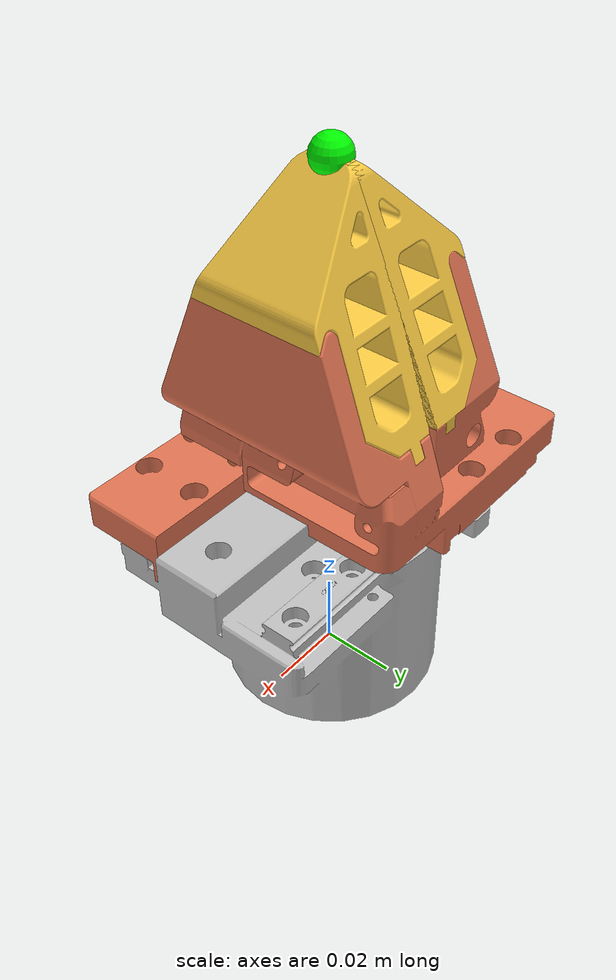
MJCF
<mujoco model="flexible">
  <compiler angle="radian"/>

  <asset>
    <mesh name="flexible_base" content_type="model/stl" file="assets/base.stl"/>
    <mesh name="linear_module" content_type="model/stl" file="assets/linear_module.stl"/>
    <mesh name="soft_tips" content_type="model/stl" file="assets/soft_tips.stl"/>
  </asset>

  <worldbody>
    <body name="gripper" pos="0 0.0007004 -0.0021481" quat="0 -0.70711 0.70711 0">
      <inertial pos="0 0 0" mass="0.455645" diaginertia="0.0003 0.0003 0.0002"/>
      <geom type="mesh" quat="0 0.707107 0.707107 0" rgba="0.74902 0.74902 0.74902 1" mesh="flexible_base" contype="0" conaffinity="0"/>
      <site name="tcp_site" pos="0 0 0" quat="0 1 0 0" size="0.005" rgba="1 0 0 1"/>
      <site name="grasp_site" pos="0 0 -0.1439" quat="0 1 0 0" size="0.005" rgba="0 1 0 1"/>
      <body name="linear_module" pos="-0.02615 0.04395 -0.0547" quat="0.707107 -0.707107 0 0">
        <inertial pos="0.0206066 0.0299426 -0.0504181" quat="0.764844 0.232608 -0.418301 0.431197" mass="0.120713" diaginertia="9.73585e-05 9.07567e-05 4.0415e-05"/>
        <joint name="joint7" pos="0 0 0" axis="0 0 -1" type="slide" range="0 0.048" actuatorfrcrange="-10 10"/>
        <geom pos="0.00406876 0.0123 -0.0209218" quat="0.499998 -0.5 -0.5 -0.500002" type="mesh" rgba="0.87451 0.447059 0.317647 1" mesh="linear_module"/>
        <geom pos="0.006 0.00575867 -0.0451883" quat="0.499998 -0.5 -0.5 -0.500002" type="mesh" rgba="0.980392 0.796078 0.262745 1" mesh="soft_tips"/>
      </body>
      <body name="linear_module_2" pos="0.02615 -0.04395 -0.0547" quat="0 0 0.707107 -0.707107">
        <inertial pos="0.0206066 0.0299426 -0.0504181" quat="0.764844 0.232608 -0.418301 0.431197" mass="0.120713" diaginertia="9.73585e-05 9.07567e-05 4.0415e-05"/>
        <joint name="joint8" pos="0 0 0" axis="0 0 -1" type="slide" range="0 0.048" actuatorfrcrange="-10 10"/>
        <geom pos="0.006 0.00575867 -0.0451883" quat="0.499998 -0.5 -0.5 -0.500002" type="mesh" rgba="0.980392 0.796078 0.262745 1" mesh="soft_tips"/>
        <geom pos="0.00406876 0.0123 -0.0209218" quat="0.499998 -0.5 -0.5 -0.500002" type="mesh" rgba="0.87451 0.447059 0.317647 1" mesh="linear_module"/>
      </body>
    </body>
  </worldbody>

  <equality>
    <joint joint1="joint7" joint2="joint8" polycoef="0 1 0 0 0"/>
  </equality>

  <contact>
    <exclude body1="gripper" body2="linear_module"/>
    <exclude body1="gripper" body2="linear_module_2"/>
    <exclude body1="linear_module" body2="linear_module_2"/>
  </contact>
</mujoco>
